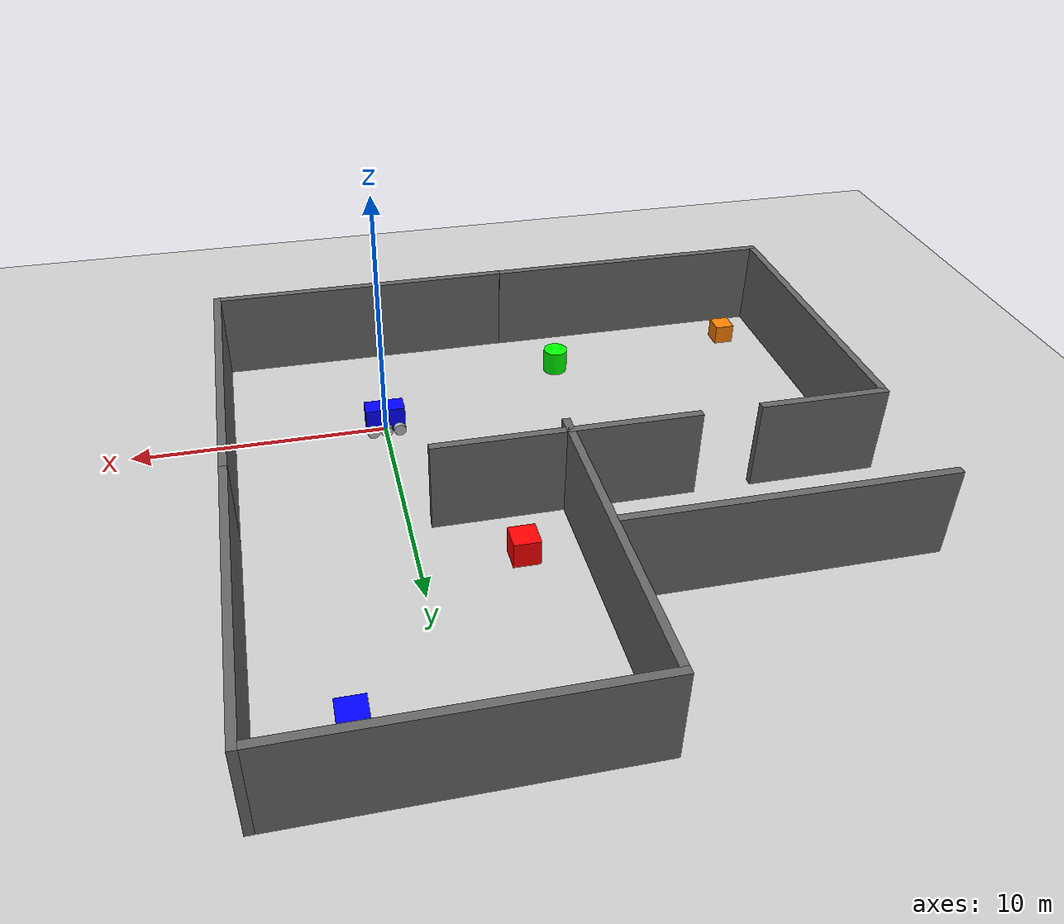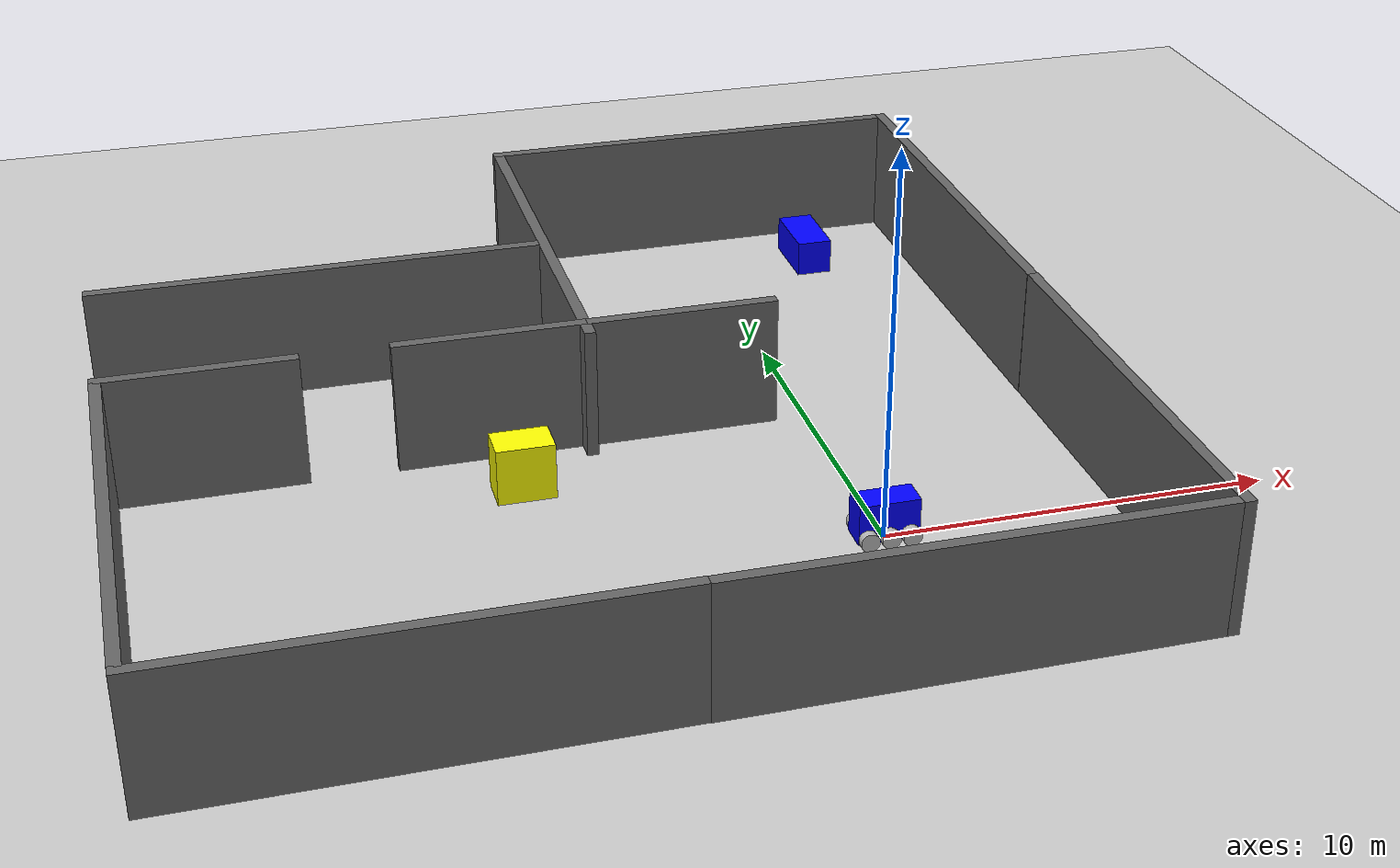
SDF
<sdf version="1.10">
 <world name="room">
  <physics name="1ms" type="ignored">
   <max_step_size>0.001</max_step_size>
   <real_time_factor>1.0</real_time_factor>
  </physics>
  <plugin filename="gz-sim-physics-system" name="gz::sim::systems::Physics"/>
  <plugin filename="gz-sim-user-commands-system" name="gz::sim::systems::UserCommands"/>
  <plugin filename="gz-sim-scene-broadcaster-system" name="gz::sim::systems::SceneBroadcaster"/>
  <plugin filename="gz-sim-sensors-system" name="gz::sim::systems::Sensors">
   <render_engine>ogre2</render_engine>
  </plugin>
  <plugin filename="gz-sim-logicalaudiosensorplugin-system" name="gz::sim::systems::LogicalAudioSensorPlugin"/>
  <light type="directional" name="sun">
   <cast_shadows>false</cast_shadows>
   <pose>0 0 10 0 0 0</pose>
   <diffuse>1 1 1 1</diffuse>
   <specular>0.05 0.05 0.05 1</specular>
   <attenuation>
    <range>1000</range>
    <constant>0.9</constant>
    <linear>0.01</linear>
    <quadratic>0.001</quadratic>
   </attenuation>
   <direction>0 0 -1</direction>
  </light>
  <model name="ground_plane">
   <static>true</static>
   <link name="link">
    <collision name="collision"><geometry><plane><normal>0 0 1</normal></plane></geometry></collision>
    <visual name="visual">
     <geometry><plane><normal>0 0 1</normal><size>100 100</size></plane></geometry>
     <material>
      <ambient>0.8 0.8 0.8 1</ambient>
      <diffuse>0.8 0.8 0.8 1</diffuse>
      <specular>0.8 0.8 0.8 1</specular>
     </material>
    </visual>
   </link>
  </model>
  <include><uri>file:///workspace/models/gazebo/flip</uri><name>FLIP</name></include>
  <include>
   <uri>file:///workspace/models/gazebo/obstacles/walls/horizontalWall0_3x12x3_5</uri>
   <name>horizontalWallBig</name>
   <pose>6.1378297805786133 0 1.75 0 0 0</pose>
  </include>
  <include>
   <uri>file:///workspace/models/gazebo/obstacles/walls/horizontalWall0_3x12x3_5</uri>
   <name>verticalWallBig</name>
   <pose>7.2243547037942335e-06 -5.8478302955627441 1.75 0 0 1.5708000357176291</pose>
  </include>
  <include>
   <uri>file:///workspace/models/gazebo/obstacles/walls/verticalWall0_3x5x3_5</uri>
   <name>verticalWallSmall</name>
   <pose>-3.2926583290100098 6.3540897369384766 1.75 0 0 1.5707999672671717</pose>
  </include>
  <include>
   <uri>file:///workspace/models/gazebo/obstacles/walls/horizontalWall0_3x12x3_5</uri>
   <name>horizontalWallBig_1</name>
   <pose>6.1292400360107422 11.98643970489502 1.75 0 0 0</pose>
  </include>
  <include>
   <uri>file:///workspace/models/gazebo/obstacles/walls/verticalWall0_3x12x3_5</uri>
   <name>verticalWallBig_1</name>
   <pose>0.00072676839772611856 17.835100173950195 1.75 0 0 1.5707999672671711</pose>
  </include>
  <include>
   <uri>file:///workspace/models/gazebo/obstacles/walls/horizontalWall0_3x12x3_5</uri>
   <name>horizontalWallBig_2</name>
   <pose>-5.8510937690734863 11.696800231933594 1.75 0 0 0</pose>
  </include>
  <include>
   <uri>file:///workspace/models/gazebo/obstacles/walls/verticalWall0_3x12x3_5</uri>
   <name>verticalWallBig_2</name>
   <pose>-11.975589752197266 -5.8330597877502441 1.75 0 0 1.5707999672671717</pose>
  </include>
  <include>
   <uri>file:///workspace/models/gazebo/obstacles/walls/horizontalWall0_3x12x3_5</uri>
   <name>horizontalWallBig_3</name>
   <pose>-17.832462310791016 0.27177301049232483 1.75 0 0 0</pose>
  </include>
  <include>
   <uri>file:///workspace/models/gazebo/obstacles/walls/verticalWall0_3x5x3_5</uri>
   <name>verticalWallSmall_2</name>
   <pose>-8.252507209777832 6.3668909072875977 1.75 0 0 1.5707999672671717</pose>
  </include>
  <include>
   <uri>file:///workspace/models/gazebo/obstacles/walls/verticalWall0_3x5x3_5</uri>
   <name>verticalWallSmall_3</name>
   <pose>-15.482864379882812 6.3641500473022452 1.75 0 0 1.5707999672671717</pose>
  </include>
  <include>
   <uri>file:///workspace/models/gazebo/obstacles/walls/verticalWall0_3x12x3_5</uri>
   <name>verticalWallBig_3</name>
   <pose>-11.987987518310547 11.363300323486328 1.75 0 0 1.5707999672671717</pose>
  </include>
  <include>
   <uri>file:///workspace/models/gazebo/obstacles/shapes/redCube1x1x1</uri>
   <name>redCube</name>
   <pose>-3.6559658050537109 8.7096595764160156 0.5 0 0 0</pose>
  </include>
  <include>
   <uri>file:///workspace/models/gazebo/obstacles/shapes/greenCylinder0_5x1</uri>
   <name>greenCylinder</name>
   <pose>-7.8899140357971191 -3 0.5 0 0 0</pose>
  </include>
  <include>
   <uri>file:///workspace/models/gazebo/obstacles/shapes/blueBox1x2x1</uri>
   <name>blueBox</name>
   <pose>3 15.608985900878906 0.5 0 0 0</pose>
  </include>
  <include>
   <uri>file:///workspace/models/gazebo/obstacles/shapes/yellowBox1_5x1x1_5</uri>
   <name>yellowBox</name>
   <pose>-7.9256100654602051 4.3805632591247559 0.75 0 0 0</pose>
  </include>
  <include>
   <uri>file:///workspace/models/gazebo/obstacles/shapes/pinkBall0_6</uri>
   <name>pinkBall</name>
   <pose>-8.2594108581542969 8.8796701431274414 0.60000002384185791 0 0 0</pose>
  </include>
  <include>
   <uri>file:///workspace/models/gazebo/obstacles/shapes/orangeBox0_8x0_8x0_8</uri>
   <name>orangeBox</name>
   <pose>-16 -4 0.4 0 0 0</pose>
  </include>
 </world>
</sdf>
